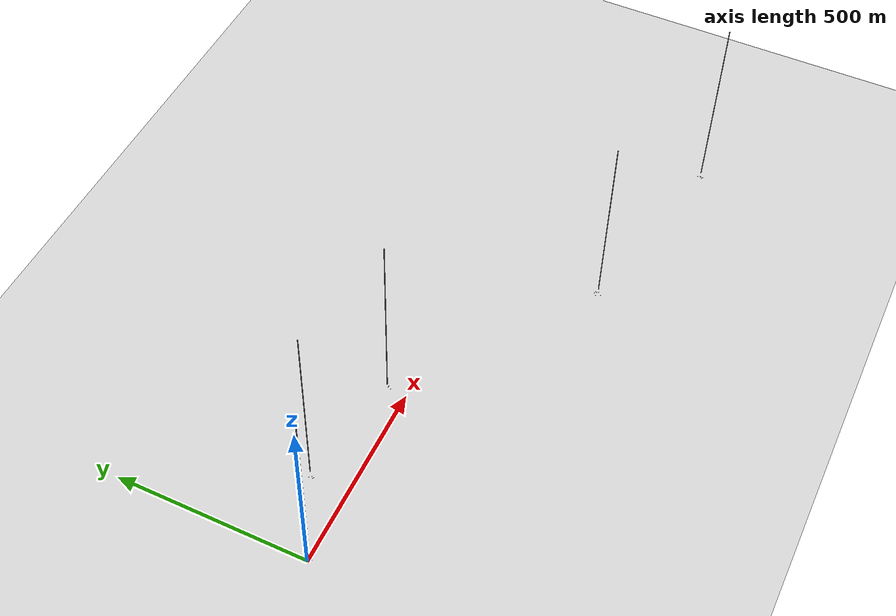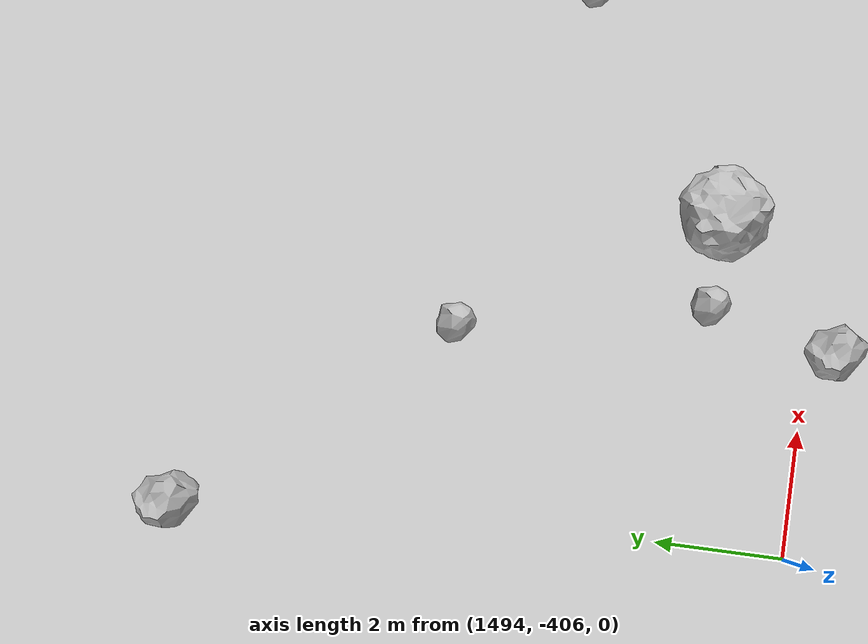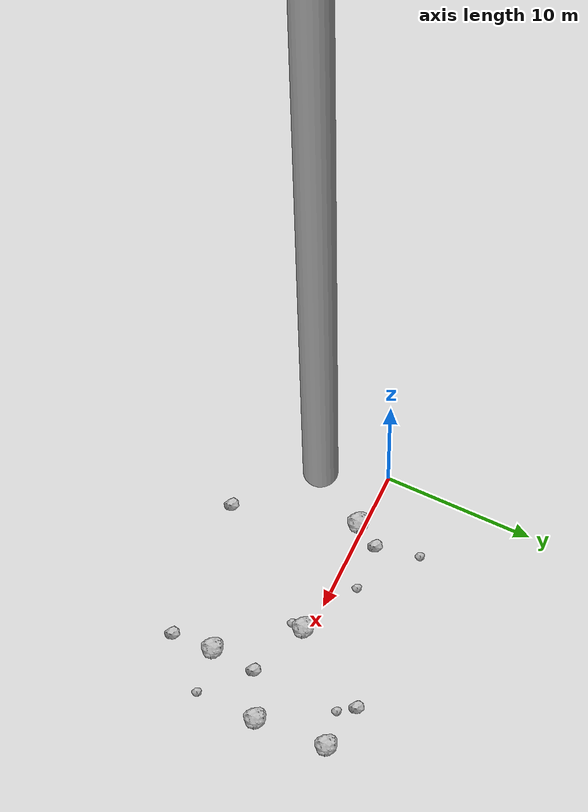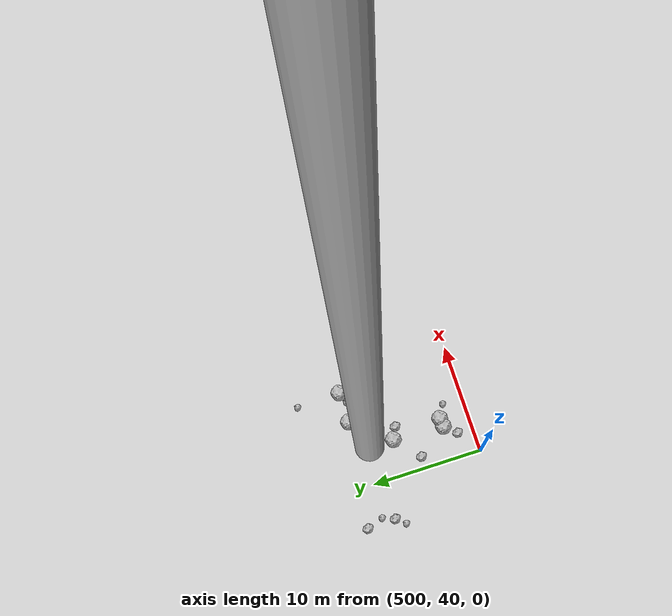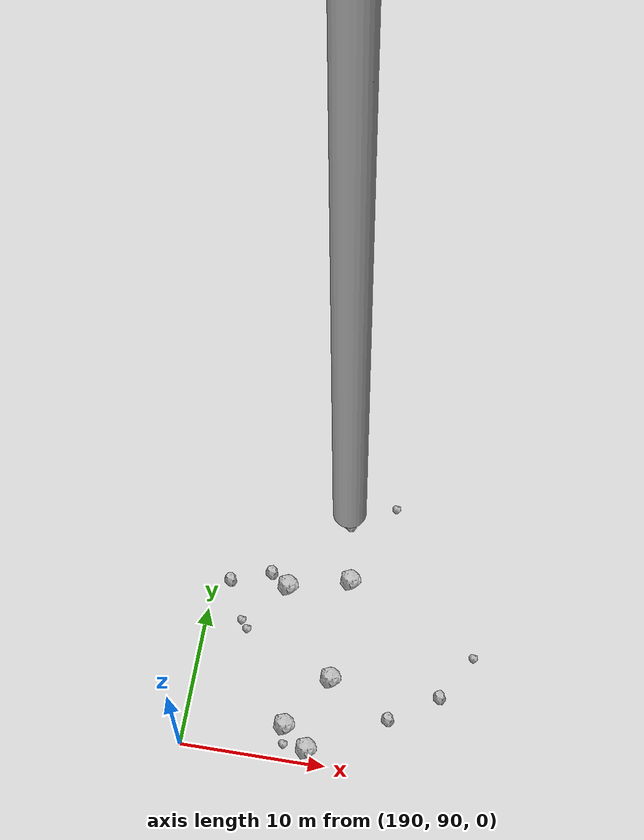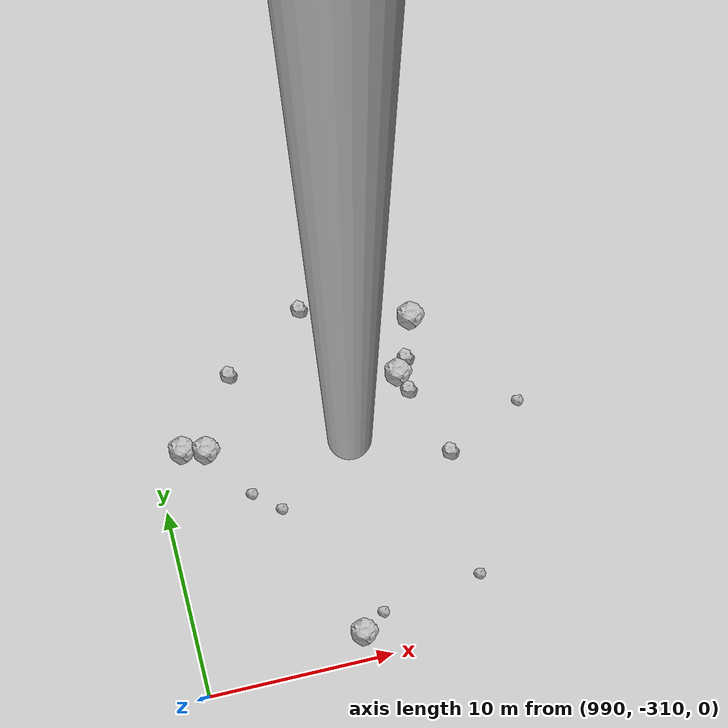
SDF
<?xml version="1.0" ?>
<sdf version="1.6">
  <world name="default">

    <include>
      <uri>model://custom_ground</uri>
    </include>

    <include>
      <uri>model://sun</uri>
    </include>

    <spherical_coordinates>
      <surface_model>EARTH_WGS84</surface_model>
      <latitude_deg>38.161479</latitude_deg>
      <longitude_deg>-122.454630</longitude_deg>
      <elevation>488.0</elevation>
      <heading_deg>90</heading_deg>
    </spherical_coordinates>

    <model name="rock1_0_0">
      <include>
        <uri>model://rock1</uri>
        <pose>3.956378052456766 -0.3883421835608676 0.5 0 0 0</pose>
      </include>
    </model>
    <model name="rock1_0_1">
      <include>
        <uri>model://rock1</uri>
        <pose>15.728511128090899 -5.084927938237511 0.5 0 0 0</pose>
      </include>
    </model>
    <model name="rock1_0_2">
      <include>
        <uri>model://rock1</uri>
        <pose>12.050017049908394 -0.486733165648106 0.5 0 0 0</pose>
      </include>
    </model>
    <model name="rock1_0_3">
      <include>
        <uri>model://rock1</uri>
        <pose>18.55581594553521 4.174303848514288 0.5 0 0 0</pose>
      </include>
    </model>
    <model name="rock1_0_4">
      <include>
        <uri>model://rock1</uri>
        <pose>18.822631100645374 -0.6050209773663866 0.5 0 0 0</pose>
      </include>
    </model>
    <model name="rock2_0_0">
      <include>
        <uri>model://rock2</uri>
        <pose>15.783421991998912 -7.850283512393652 0.3 0 0 0</pose>
      </include>
    </model>
    <model name="rock2_0_1">
      <include>
        <uri>model://rock2</uri>
        <pose>15.392623739758836 4.8489121377233175 0.3 0 0 0</pose>
      </include>
    </model>
    <model name="rock2_0_2">
      <include>
        <uri>model://rock2</uri>
        <pose>6.128363461470561 -8.382457746049647 0.3 0 0 0</pose>
      </include>
    </model>
    <model name="rock2_0_3">
      <include>
        <uri>model://rock2</uri>
        <pose>15.85838613390486 -2.092566009149457 0.3 0 0 0</pose>
      </include>
    </model>
    <model name="rock2_0_4">
      <include>
        <uri>model://rock2</uri>
        <pose>4.876042124115276 1.2896419548631286 0.3 0 0 0</pose>
      </include>
    </model>
    <model name="rock3_0_0">
      <include>
        <uri>model://rock3</uri>
        <pose>11.91034840866074 -1.3229219193104562 0.2 0 0 0</pose>
      </include>
    </model>
    <model name="rock3_0_1">
      <include>
        <uri>model://rock3</uri>
        <pose>4.290966371213694 4.146753667201841 0.2 0 0 0</pose>
      </include>
    </model>
    <model name="rock3_0_2">
      <include>
        <uri>model://rock3</uri>
        <pose>16.11127294595827 3.7613586423363046 0.2 0 0 0</pose>
      </include>
    </model>
    <model name="rock3_0_3">
      <include>
        <uri>model://rock3</uri>
        <pose>18.655060285979506 -4.740302802442304 0.2 0 0 0</pose>
      </include>
    </model>
    <model name="rock3_0_4">
      <include>
        <uri>model://rock3</uri>
        <pose>7.9973031866929905 1.4000504515911487 0.2 0 0 0</pose>
      </include>
    </model>
    <model name="rock1_1_0">
      <include>
        <uri>model://rock1</uri>
        <pose>198.55997603061547 90.94926656459279 0.5 0 0 0</pose>
      </include>
    </model>
    <model name="rock1_1_1">
      <include>
        <uri>model://rock1</uri>
        <pose>199.3720672568916 96.16937561454644 0.5 0 0 0</pose>
      </include>
    </model>
    <model name="rock1_1_2">
      <include>
        <uri>model://rock1</uri>
        <pose>196.8056214575723 92.36229034030245 0.5 0 0 0</pose>
      </include>
    </model>
    <model name="rock1_1_3">
      <include>
        <uri>model://rock1</uri>
        <pose>199.5672462873182 103.56727212061399 0.5 0 0 0</pose>
      </include>
    </model>
    <model name="rock1_1_4">
      <include>
        <uri>model://rock1</uri>
        <pose>195.26403234962524 102.47667695022454 0.5 0 0 0</pose>
      </include>
    </model>
    <model name="rock2_1_0">
      <include>
        <uri>model://rock2</uri>
        <pose>206.97640470897352 96.08139222417539 0.3 0 0 0</pose>
      </include>
    </model>
    <model name="rock2_1_1">
      <include>
        <uri>model://rock2</uri>
        <pose>193.93544996932667 103.34517733480241 0.3 0 0 0</pose>
      </include>
    </model>
    <model name="rock2_1_2">
      <include>
        <uri>model://rock2</uri>
        <pose>191.14167648079237 102.34335147814986 0.3 0 0 0</pose>
      </include>
    </model>
    <model name="rock2_1_3">
      <include>
        <uri>model://rock2</uri>
        <pose>203.70543157068008 93.9464727383008 0.3 0 0 0</pose>
      </include>
    </model>
    <model name="rock2_1_4">
      <include>
        <uri>model://rock2</uri>
        <pose>198.8491692144106 107.92581610341331 0.3 0 0 0</pose>
      </include>
    </model>
    <model name="rock3_1_0">
      <include>
        <uri>model://rock3</uri>
        <pose>196.91198109910857 91.06631079793033 0.2 0 0 0</pose>
      </include>
    </model>
    <model name="rock3_1_1">
      <include>
        <uri>model://rock3</uri>
        <pose>192.9347082191512 98.87988253267203 0.2 0 0 0</pose>
      </include>
    </model>
    <model name="rock3_1_2">
      <include>
        <uri>model://rock3</uri>
        <pose>201.92755319411657 109.6491728485997 0.2 0 0 0</pose>
      </include>
    </model>
    <model name="rock3_1_3">
      <include>
        <uri>model://rock3</uri>
        <pose>192.45481368394877 99.47415494648666 0.2 0 0 0</pose>
      </include>
    </model>
    <model name="rock3_1_4">
      <include>
        <uri>model://rock3</uri>
        <pose>208.89463538064504 99.26622762551581 0.2 0 0 0</pose>
      </include>
    </model>
    <model name="rock1_2_0">
      <include>
        <uri>model://rock1</uri>
        <pose>503.3153574481195 47.13357029604679 0.5 0 0 0</pose>
      </include>
    </model>
    <model name="rock1_2_1">
      <include>
        <uri>model://rock1</uri>
        <pose>508.876312970553 50.464175997647395 0.5 0 0 0</pose>
      </include>
    </model>
    <model name="rock1_2_2">
      <include>
        <uri>model://rock1</uri>
        <pose>503.85336778247006 42.59218268515078 0.5 0 0 0</pose>
      </include>
    </model>
    <model name="rock1_2_3">
      <include>
        <uri>model://rock1</uri>
        <pose>506.06866287610245 50.4442139050481 0.5 0 0 0</pose>
      </include>
    </model>
    <model name="rock1_2_4">
      <include>
        <uri>model://rock1</uri>
        <pose>503.0689540450827 42.51775321613904 0.5 0 0 0</pose>
      </include>
    </model>
    <model name="rock2_2_0">
      <include>
        <uri>model://rock2</uri>
        <pose>496.5890848244487 49.146978392898944 0.3 0 0 0</pose>
      </include>
    </model>
    <model name="rock2_2_1">
      <include>
        <uri>model://rock2</uri>
        <pose>496.52201571829477 51.668221644035754 0.3 0 0 0</pose>
      </include>
    </model>
    <model name="rock2_2_2">
      <include>
        <uri>model://rock2</uri>
        <pose>504.40259770273025 46.60269088084005 0.3 0 0 0</pose>
      </include>
    </model>
    <model name="rock2_2_3">
      <include>
        <uri>model://rock2</uri>
        <pose>501.0939765560536 45.217562926493294 0.3 0 0 0</pose>
      </include>
    </model>
    <model name="rock2_2_4">
      <include>
        <uri>model://rock2</uri>
        <pose>502.13567004154254 41.456704868999864 0.3 0 0 0</pose>
      </include>
    </model>
    <model name="rock3_2_0">
      <include>
        <uri>model://rock3</uri>
        <pose>507.8769780132632 50.06298231164476 0.2 0 0 0</pose>
      </include>
    </model>
    <model name="rock3_2_1">
      <include>
        <uri>model://rock3</uri>
        <pose>496.99523498077815 50.189962382736 0.2 0 0 0</pose>
      </include>
    </model>
    <model name="rock3_2_2">
      <include>
        <uri>model://rock3</uri>
        <pose>505.0187867826875 41.86072136140263 0.2 0 0 0</pose>
      </include>
    </model>
    <model name="rock3_2_3">
      <include>
        <uri>model://rock3</uri>
        <pose>495.89014007952034 48.309281935728265 0.2 0 0 0</pose>
      </include>
    </model>
    <model name="rock3_2_4">
      <include>
        <uri>model://rock3</uri>
        <pose>508.7570192864233 54.38374955844901 0.2 0 0 0</pose>
      </include>
    </model>
    <model name="rock1_3_0">
      <include>
        <uri>model://rock1</uri>
        <pose>1003.6819395238429 -295.5026697705614 0.5 0 0 0</pose>
      </include>
    </model>
    <model name="rock1_3_1">
      <include>
        <uri>model://rock1</uri>
        <pose>1005.0176828913446 -292.6954014085818 0.5 0 0 0</pose>
      </include>
    </model>
    <model name="rock1_3_2">
      <include>
        <uri>model://rock1</uri>
        <pose>998.7816227839868 -308.52934573401325 0.5 0 0 0</pose>
      </include>
    </model>
    <model name="rock1_3_3">
      <include>
        <uri>model://rock1</uri>
        <pose>991.5507935387213 -296.9569402246902 0.5 0 0 0</pose>
      </include>
    </model>
    <model name="rock1_3_4">
      <include>
        <uri>model://rock1</uri>
        <pose>992.779628781946 -297.2478459778664 0.5 0 0 0</pose>
      </include>
    </model>
    <model name="rock2_3_0">
      <include>
        <uri>model://rock2</uri>
        <pose>1004.253263115788 -294.8041073725917 0.3 0 0 0</pose>
      </include>
    </model>
    <model name="rock2_3_1">
      <include>
        <uri>model://rock2</uri>
        <pose>1004.0170806688363 -296.51719564642485 0.3 0 0 0</pose>
      </include>
    </model>
    <model name="rock2_3_2">
      <include>
        <uri>model://rock2</uri>
        <pose>999.28633013828 -290.99049112865436 0.3 0 0 0</pose>
      </include>
    </model>
    <model name="rock2_3_3">
      <include>
        <uri>model://rock2</uri>
        <pose>1005.4293565298626 -300.2341123374352 0.3 0 0 0</pose>
      </include>
    </model>
    <model name="rock2_3_4">
      <include>
        <uri>model://rock2</uri>
        <pose>994.830487987283 -293.5746916628459 0.3 0 0 0</pose>
      </include>
    </model>
    <model name="rock3_3_0">
      <include>
        <uri>model://rock3</uri>
        <pose>1009.5091423016977 -298.4103907426749 0.2 0 0 0</pose>
      </include>
    </model>
    <model name="rock3_3_1">
      <include>
        <uri>model://rock3</uri>
        <pose>1005.4183615287479 -306.94212354736163 0.2 0 0 0</pose>
      </include>
    </model>
    <model name="rock3_3_2">
      <include>
        <uri>model://rock3</uri>
        <pose>995.9818026042014 -301.21473565703883 0.2 0 0 0</pose>
      </include>
    </model>
    <model name="rock3_3_3">
      <include>
        <uri>model://rock3</uri>
        <pose>994.605849397417 -300.0704654764732 0.2 0 0 0</pose>
      </include>
    </model>
    <model name="rock3_3_4">
      <include>
        <uri>model://rock3</uri>
        <pose>999.989582895627 -307.7512496593152 0.2 0 0 0</pose>
      </include>
    </model>
    <model name="rock1_4_0">
      <include>
        <uri>model://rock1</uri>
        <pose>1502.9933901036698 -407.9711669755593 0.5 0 0 0</pose>
      </include>
    </model>
    <model name="rock1_4_1">
      <include>
        <uri>model://rock1</uri>
        <pose>1504.353206811134 -399.05485696940156 0.5 0 0 0</pose>
      </include>
    </model>
    <model name="rock1_4_2">
      <include>
        <uri>model://rock1</uri>
        <pose>1503.9992816887022 -405.77117121142294 0.5 0 0 0</pose>
      </include>
    </model>
    <model name="rock1_4_3">
      <include>
        <uri>model://rock1</uri>
        <pose>1502.6845172342412 -392.97097319103216 0.5 0 0 0</pose>
      </include>
    </model>
    <model name="rock1_4_4">
      <include>
        <uri>model://rock1</uri>
        <pose>1499.2013206786337 -404.38118903792736 0.5 0 0 0</pose>
      </include>
    </model>
    <model name="rock2_4_0">
      <include>
        <uri>model://rock2</uri>
        <pose>1497.290380840107 -406.3733169370616 0.3 0 0 0</pose>
      </include>
    </model>
    <model name="rock2_4_1">
      <include>
        <uri>model://rock2</uri>
        <pose>1507.3514943865264 -400.6173769998759 0.3 0 0 0</pose>
      </include>
    </model>
    <model name="rock2_4_2">
      <include>
        <uri>model://rock2</uri>
        <pose>1503.7117716956743 -401.4660370389305 0.3 0 0 0</pose>
      </include>
    </model>
    <model name="rock2_4_3">
      <include>
        <uri>model://rock2</uri>
        <pose>1491.1679857237584 -403.1777631961058 0.3 0 0 0</pose>
      </include>
    </model>
    <model name="rock2_4_4">
      <include>
        <uri>model://rock2</uri>
        <pose>1493.6762810122495 -396.43592179453844 0.3 0 0 0</pose>
      </include>
    </model>
    <model name="rock3_4_0">
      <include>
        <uri>model://rock3</uri>
        <pose>1497.7529535004055 -404.40552496137525 0.2 0 0 0</pose>
      </include>
    </model>
    <model name="rock3_4_1">
      <include>
        <uri>model://rock3</uri>
        <pose>1496.9673546164465 -400.4931990085649 0.2 0 0 0</pose>
      </include>
    </model>
    <model name="rock3_4_2">
      <include>
        <uri>model://rock3</uri>
        <pose>1505.3608831161587 -406.2050621320129 0.2 0 0 0</pose>
      </include>
    </model>
    <model name="rock3_4_3">
      <include>
        <uri>model://rock3</uri>
        <pose>1503.8359654438952 -392.4814336301195 0.2 0 0 0</pose>
      </include>
    </model>
    <model name="rock3_4_4">
      <include>
        <uri>model://rock3</uri>
        <pose>1502.5507721466324 -401.99340696948803 0.2 0 0 0</pose>
      </include>
    </model>

    <model name="cylinder_1">
      <static>true</static>
      <link name="link">
        <visual name="visual">
          <geometry>
            <cylinder>
              <radius>1</radius>
              <length>500</length>
            </cylinder>
          </geometry>
        </visual>
      </link>
      <pose>10 0 270 0 0 0</pose>
    </model>

    <model name="cylinder_2">
      <static>true</static>
      <link name="link">
        <visual name="visual">
          <geometry>
            <cylinder>
              <radius>1</radius>
              <length>500</length>
            </cylinder>
          </geometry>
        </visual>
      </link>
      <pose>200 100 270 0 0 0</pose>
    </model>

    <model name="cylinder_3">
      <static>true</static>
      <link name="link">
        <visual name="visual">
          <geometry>
            <cylinder>
              <radius>1</radius>
              <length>500</length>
            </cylinder>
          </geometry>
        </visual>
      </link>
      <pose>500 50 270 0 0 0</pose>
    </model>

    <model name="cylinder_4">
      <static>true</static>
      <link name="link">
        <visual name="visual">
          <geometry>
            <cylinder>
              <radius>1</radius>
              <length>500</length>
            </cylinder>
          </geometry>
        </visual>
      </link>
      <pose>1000 -300 270 0 0 0</pose>
    </model>

    <model name="cylinder_5">
      <static>true</static>
      <link name="link">
        <visual name="visual">
          <geometry>
            <cylinder>
              <radius>1</radius>
              <length>500</length>
            </cylinder>
          </geometry>
        </visual>
      </link>
      <pose>1500 -400 270 0 0 0</pose>
    </model>

  </world>
</sdf>

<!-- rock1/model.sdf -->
<sdf version="1.6">
  <model name="rock1">
    <static>true</static> <!-- Set to true if the model should not move -->
    <pose>0 0 0 0 0 0</pose>

    <!--z offset is 0.5 for full scale-->

    <link name="link">
      <collision name="rock1_collision">
        <geometry>
          <mesh>
            <uri>model://meshes/rock1.dae</uri>
          </mesh>
        </geometry>
      </collision>
      <visual name="rock1_visual">
        <geometry>
          <mesh>
            <uri>model://meshes/rock1.dae</uri>
          </mesh>
        </geometry>
        <material>
          <script>
            <uri>model://materials/scripts/sand_pebbles.material</uri>
            <name>custom_ground/Image</name>
          </script>
        </material>
      </visual>
    </link>
  </model>
</sdf>

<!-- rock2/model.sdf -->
<sdf version="1.6">
  <model name="rock2">
    <static>true</static> <!-- Set to true if the model should not move -->
    <pose>0 0 0 0 0 0</pose>

    <!--z offset is 0.3 for full scale-->

    <link name="link">
      <collision name="rock2_collision">
        <geometry>
          <mesh>
            <uri>model://meshes/rock2.dae</uri>
          </mesh>
        </geometry>
      </collision>
      <visual name="rock2_visual">
        <geometry>
          <mesh>
            <uri>model://meshes/rock2.dae</uri>
          </mesh>
        </geometry>
        <material>
          <script>
            <uri>model://materials/scripts/sand_pebbles.material</uri>
            <name>custom_ground/Image</name>
          </script>
        </material>
      </visual>
    </link>
  </model>
</sdf>

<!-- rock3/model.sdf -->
<sdf version="1.6">
  <model name="rock3">
    <static>true</static> <!-- Set to true if the model should not move -->
    <pose>0 0 0 0 0 0</pose>

    <!--z offset is 0.2 for full scale-->

    <link name="link">
      <collision name="rock3_collision">
        <geometry>
          <mesh>
            <uri>model://meshes/rock3.dae</uri>
          </mesh>
        </geometry>
      </collision>
      <visual name="rock3_visual">
        <geometry>
          <mesh>
            <uri>model://meshes/rock3.dae</uri>
          </mesh>
        </geometry>
        <material>
          <script>
            <uri>model://materials/scripts/sand_pebbles.material</uri>
            <name>custom_ground/Image</name>
          </script>
        </material>
      </visual>
    </link>
  </model>
</sdf>

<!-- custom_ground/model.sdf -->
<sdf version="1.6">
  <model name="custom_ground">
    <static>true</static> <!-- Ground is static and immovable -->
    <link name="ground_link">
      <pose>240 0 0 0 0 0</pose> <!-- Position and orientation relative to the world -->
      <!-- Visual Representation -->
      <visual name="ground_visual">
        <geometry>
          <plane>
            <normal>0 0 1</normal> <!-- Upward facing plane -->
            <size>500 500</size> <!-- Size of the plane -->
          </plane>
        </geometry>
        <material>
          <script>
            <uri>model://materials/scripts/sand_pebbles.material</uri>
            <name>custom_ground/Image</name>
          </script>
        </material>
      </visual>

      <!-- Collision Representation -->
      <collision name="ground_collision">
        <geometry>
          <plane>
            <normal>0 0 1</normal>
            <size>100 100</size>
          </plane>
        </geometry>
      </collision>

    </link>
  </model>
</sdf>
